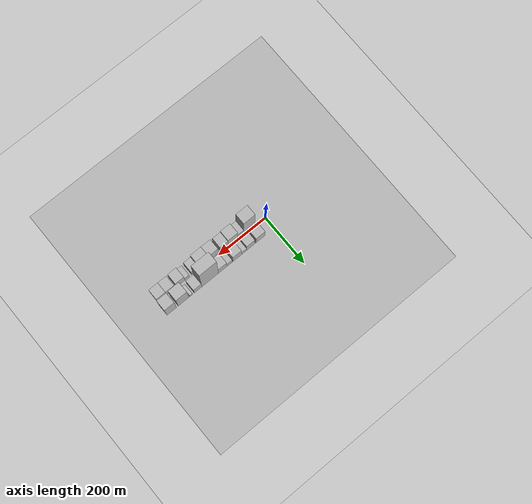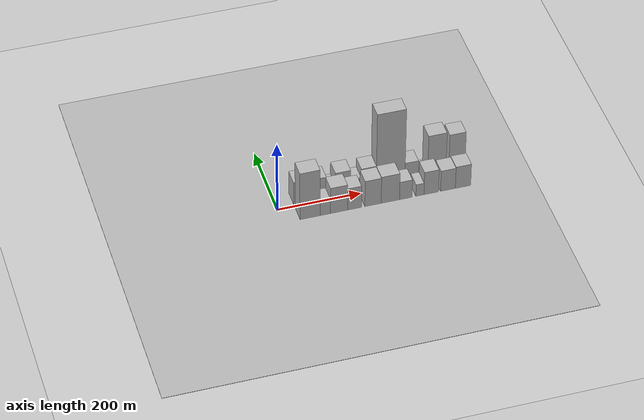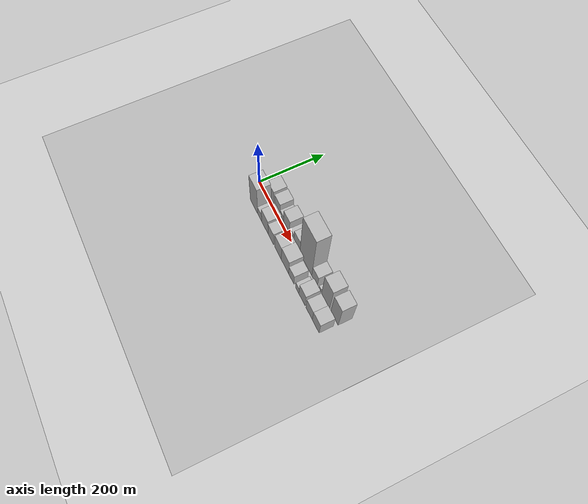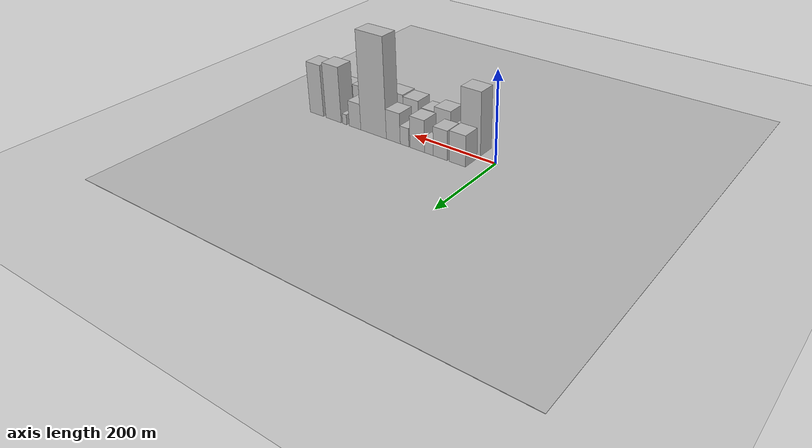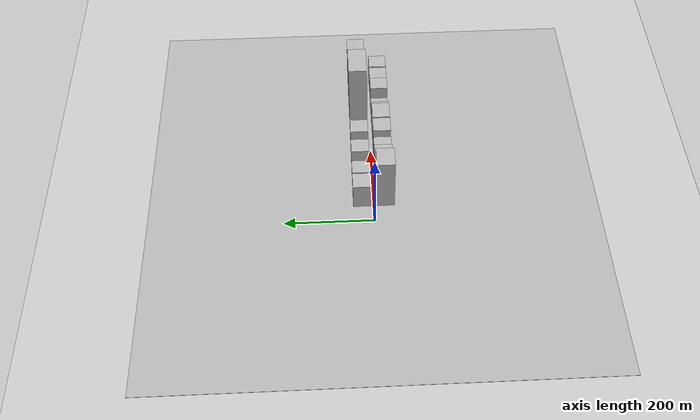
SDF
<?xml version="1.0" encoding="utf-8"?>

<sdf version="1.6">

   <world name="default">

      <gui fullscreen="0">

         <camera name="user_camera">

            <pose>-15 0 4.57585 0 0 0</pose>

            <view_controller>orbit</view_controller>

         </camera>

      </gui>

      <scene>

         <sky>

           <clouds>

             <speed>12</speed>

           </clouds>

         </sky>

         <ambient>0.4 0.4 0.4 1</ambient>

         <background>0.7 0.7 0.7 1</background>

         <shadows>1</shadows>

      </scene>

      <gravity>0 0 -9.8066</gravity>

      <magnetic_field>6e-06 2.3e-05 -4.2e-05</magnetic_field>

      <physics default="0" name="default_physics" type="ode">

         <ode>

            <solver>

               <type>quick</type>

               <iters>10</iters>

               <sor>1.0</sor>

               <use_dynamic_moi_rescaling>0</use_dynamic_moi_rescaling>

            </solver>

            <constraints>

               <cfm>0</cfm>

               <erp>0.2</erp>

               <contact_max_correcting_vel>100</contact_max_correcting_vel>

               <contact_surface_layer>0.001</contact_surface_layer>

            </constraints>

         </ode>

         <max_step_size>0.004</max_step_size>

         <real_time_factor>1</real_time_factor>

         <real_time_update_rate>250</real_time_update_rate>

      </physics>

      <light name="sun" type="directional">

         <cast_shadows>1</cast_shadows>

         <pose>0 0 10 0 0 0</pose>

         <diffuse>0.8 0.8 0.8 1</diffuse>

         <specular>0.2 0.2 0.2 1</specular>

         <attenuation>

            <range>1000</range>

            <constant>0.9</constant>

            <linear>0.01</linear>

            <quadratic>0.001</quadratic>

         </attenuation>

         <direction>-0.5 0.1 -0.9</direction>

      </light>

      <include>

         <name>ground_plane_1</name>

         <uri>model://HANNAS_ground_plane</uri>

         <pose>0 0 0  0 0 0</pose>

      </include>

      <include>

         <name>ground_plane_2</name>

         <uri>model://HANNAS_ground_plane</uri>

         <pose>100 0 0  0 0 0</pose>

      </include>

      <model name="building_1">

         <static>1</static>

         <pose frame="">59.2588 26.0000 0 0.000000 0.000000 1.570796</pose>

         <link name="link">

            <pose frame="">0 0 34.50 0 0 0</pose>

            <collision name="collision">

               <geometry>

                  <box>

                     <size>40.0000 38.5175 69.0000</size>

                  </box>

               </geometry>

               <max_contacts>10</max_contacts>

               <surface>

                  <contact>

                     <ode/>

                  </contact>

                  <bounce/>

                  <friction>

                     <torsional>

                        <ode/>

                     </torsional>

                     <ode/>

                  </friction>

               </surface>

            </collision>

            <visual name="visual">

               <cast_shadows>0</cast_shadows>

               <geometry>

                  <box>

                     <size>40.0000 38.5175 69.0000</size>

                  </box>

               </geometry>

               <material>

                  <script>

                     <uri>model://HANNAS_wall/materials/scripts</uri>

                     <uri>model://HANNAS_wall/materials/textures</uri>

                     <name>vrc/HANNAS_wall</name>

                  </script>

               </material>

            </visual>

            <self_collide>0</self_collide>

            <enable_wind>0</enable_wind>

            <kinematic>0</kinematic>

         </link>

      </model>

      <model name="building_2">

         <static>1</static>

         <pose frame="">100.7636 26.0000 0 0.000000 0.000000 1.570796</pose>

         <link name="link">

            <pose frame="">0 0 33.00 0 0 0</pose>

            <collision name="collision">

               <geometry>

                  <box>

                     <size>40.0000 34.4922 66.0000</size>

                  </box>

               </geometry>

               <max_contacts>10</max_contacts>

               <surface>

                  <contact>

                     <ode/>

                  </contact>

                  <bounce/>

                  <friction>

                     <torsional>

                        <ode/>

                     </torsional>

                     <ode/>

                  </friction>

               </surface>

            </collision>

            <visual name="visual">

               <cast_shadows>0</cast_shadows>

               <geometry>

                  <box>

                     <size>40.0000 34.4922 66.0000</size>

                  </box>

               </geometry>

               <material>

                  <script>

                     <uri>model://HANNAS_wall/materials/scripts</uri>

                     <uri>model://HANNAS_wall/materials/textures</uri>

                     <name>vrc/HANNAS_wall</name>

                  </script>

               </material>

            </visual>

            <self_collide>0</self_collide>

            <enable_wind>0</enable_wind>

            <kinematic>0</kinematic>

         </link>

      </model>

      <model name="building_3">

         <static>1</static>

         <pose frame="">128.8021 26.0000 0 0.000000 0.000000 1.570796</pose>

         <link name="link">

            <pose frame="">0 0 18.00 0 0 0</pose>

            <collision name="collision">

               <geometry>

                  <box>

                     <size>40.0000 21.5847 36.0000</size>

                  </box>

               </geometry>

               <max_contacts>10</max_contacts>

               <surface>

                  <contact>

                     <ode/>

                  </contact>

                  <bounce/>

                  <friction>

                     <torsional>

                        <ode/>

                     </torsional>

                     <ode/>

                  </friction>

               </surface>

            </collision>

            <visual name="visual">

               <cast_shadows>0</cast_shadows>

               <geometry>

                  <box>

                     <size>40.0000 21.5847 36.0000</size>

                  </box>

               </geometry>

               <material>

                  <script>

                     <uri>model://HANNAS_wall/materials/scripts</uri>

                     <uri>model://HANNAS_wall/materials/textures</uri>

                     <name>vrc/HANNAS_wall</name>

                  </script>

               </material>

            </visual>

            <self_collide>0</self_collide>

            <enable_wind>0</enable_wind>

            <kinematic>0</kinematic>

         </link>

      </model>

      <model name="building_4">

         <static>1</static>

         <pose frame="">157.8917 26.0000 0 0.000000 0.000000 1.570796</pose>

         <link name="link">

            <pose frame="">0 0 36.00 0 0 0</pose>

            <collision name="collision">

               <geometry>

                  <box>

                     <size>40.0000 36.5945 72.0000</size>

                  </box>

               </geometry>

               <max_contacts>10</max_contacts>

               <surface>

                  <contact>

                     <ode/>

                  </contact>

                  <bounce/>

                  <friction>

                     <torsional>

                        <ode/>

                     </torsional>

                     <ode/>

                  </friction>

               </surface>

            </collision>

            <visual name="visual">

               <cast_shadows>0</cast_shadows>

               <geometry>

                  <box>

                     <size>40.0000 36.5945 72.0000</size>

                  </box>

               </geometry>

               <material>

                  <script>

                     <uri>model://HANNAS_wall/materials/scripts</uri>

                     <uri>model://HANNAS_wall/materials/textures</uri>

                     <name>vrc/HANNAS_wall</name>

                  </script>

               </material>

            </visual>

            <self_collide>0</self_collide>

            <enable_wind>0</enable_wind>

            <kinematic>0</kinematic>

         </link>

      </model>

      <model name="building_5">

         <static>1</static>

         <pose frame="">190.3808 26.0000 0 0.000000 0.000000 1.570796</pose>

         <link name="link">

            <pose frame="">0 0 21.00 0 0 0</pose>

            <collision name="collision">

               <geometry>

                  <box>

                     <size>40.0000 22.3836 42.0000</size>

                  </box>

               </geometry>

               <max_contacts>10</max_contacts>

               <surface>

                  <contact>

                     <ode/>

                  </contact>

                  <bounce/>

                  <friction>

                     <torsional>

                        <ode/>

                     </torsional>

                     <ode/>

                  </friction>

               </surface>

            </collision>

            <visual name="visual">

               <cast_shadows>0</cast_shadows>

               <geometry>

                  <box>

                     <size>40.0000 22.3836 42.0000</size>

                  </box>

               </geometry>

               <material>

                  <script>

                     <uri>model://HANNAS_wall/materials/scripts</uri>

                     <uri>model://HANNAS_wall/materials/textures</uri>

                     <name>vrc/HANNAS_wall</name>

                  </script>

               </material>

            </visual>

            <self_collide>0</self_collide>

            <enable_wind>0</enable_wind>

            <kinematic>0</kinematic>

         </link>

      </model>

      <model name="building_6">

         <static>1</static>

         <pose frame="">219.8024 26.0000 0 0.000000 0.000000 1.570796</pose>

         <link name="link">

            <pose frame="">0 0 34.50 0 0 0</pose>

            <collision name="collision">

               <geometry>

                  <box>

                     <size>40.0000 36.4597 69.0000</size>

                  </box>

               </geometry>

               <max_contacts>10</max_contacts>

               <surface>

                  <contact>

                     <ode/>

                  </contact>

                  <bounce/>

                  <friction>

                     <torsional>

                        <ode/>

                     </torsional>

                     <ode/>

                  </friction>

               </surface>

            </collision>

            <visual name="visual">

               <cast_shadows>0</cast_shadows>

               <geometry>

                  <box>

                     <size>40.0000 36.4597 69.0000</size>

                  </box>

               </geometry>

               <material>

                  <script>

                     <uri>model://HANNAS_wall/materials/scripts</uri>

                     <uri>model://HANNAS_wall/materials/textures</uri>

                     <name>vrc/HANNAS_wall</name>

                  </script>

               </material>

            </visual>

            <self_collide>0</self_collide>

            <enable_wind>0</enable_wind>

            <kinematic>0</kinematic>

         </link>

      </model>

      <model name="building_7">

         <static>1</static>

         <pose frame="">272.6233 26.0000 0 0.000000 0.000000 1.570796</pose>

         <link name="link">

            <pose frame="">0 0 112.50 0 0 0</pose>

            <collision name="collision">

               <geometry>

                  <box>

                     <size>40.0000 69.1821 225.0000</size>

                  </box>

               </geometry>

               <max_contacts>10</max_contacts>

               <surface>

                  <contact>

                     <ode/>

                  </contact>

                  <bounce/>

                  <friction>

                     <torsional>

                        <ode/>

                     </torsional>

                     <ode/>

                  </friction>

               </surface>

            </collision>

            <visual name="visual">

               <cast_shadows>0</cast_shadows>

               <geometry>

                  <box>

                     <size>40.0000 69.1821 225.0000</size>

                  </box>

               </geometry>

               <material>

                  <script>

                     <uri>model://HANNAS_wall/materials/scripts</uri>

                     <uri>model://HANNAS_wall/materials/textures</uri>

                     <name>vrc/HANNAS_wall</name>

                  </script>

               </material>

            </visual>

            <self_collide>0</self_collide>

            <enable_wind>0</enable_wind>

            <kinematic>0</kinematic>

         </link>

      </model>

      <model name="building_8">

         <static>1</static>

         <pose frame="">323.3936 26.0000 0 0.000000 0.000000 1.570796</pose>

         <link name="link">

            <pose frame="">0 0 30.00 0 0 0</pose>

            <collision name="collision">

               <geometry>

                  <box>

                     <size>40.0000 32.3586 60.0000</size>

                  </box>

               </geometry>

               <max_contacts>10</max_contacts>

               <surface>

                  <contact>

                     <ode/>

                  </contact>

                  <bounce/>

                  <friction>

                     <torsional>

                        <ode/>

                     </torsional>

                     <ode/>

                  </friction>

               </surface>

            </collision>

            <visual name="visual">

               <cast_shadows>0</cast_shadows>

               <geometry>

                  <box>

                     <size>40.0000 32.3586 60.0000</size>

                  </box>

               </geometry>

               <material>

                  <script>

                     <uri>model://HANNAS_wall/materials/scripts</uri>

                     <uri>model://HANNAS_wall/materials/textures</uri>

                     <name>vrc/HANNAS_wall</name>

                  </script>

               </material>

            </visual>

            <self_collide>0</self_collide>

            <enable_wind>0</enable_wind>

            <kinematic>0</kinematic>

         </link>

      </model>

      <model name="building_9">

         <static>1</static>

         <pose frame="">352.4111 26.0000 0 0.000000 0.000000 1.570796</pose>

         <link name="link">

            <pose frame="">0 0 12.00 0 0 0</pose>

            <collision name="collision">

               <geometry>

                  <box>

                     <size>40.0000 11.6762 24.0000</size>

                  </box>

               </geometry>

               <max_contacts>10</max_contacts>

               <surface>

                  <contact>

                     <ode/>

                  </contact>

                  <bounce/>

                  <friction>

                     <torsional>

                        <ode/>

                     </torsional>

                     <ode/>

                  </friction>

               </surface>

            </collision>

            <visual name="visual">

               <cast_shadows>0</cast_shadows>

               <geometry>

                  <box>

                     <size>40.0000 11.6762 24.0000</size>

                  </box>

               </geometry>

               <material>

                  <script>

                     <uri>model://HANNAS_wall/materials/scripts</uri>

                     <uri>model://HANNAS_wall/materials/textures</uri>

                     <name>vrc/HANNAS_wall</name>

                  </script>

               </material>

            </visual>

            <self_collide>0</self_collide>

            <enable_wind>0</enable_wind>

            <kinematic>0</kinematic>

         </link>

      </model>

      <model name="building_10">

         <static>1</static>

         <pose frame="">384.4233 26.0000 0 0.000000 0.000000 1.570796</pose>

         <link name="link">

            <pose frame="">0 0 64.50 0 0 0</pose>

            <collision name="collision">

               <geometry>

                  <box>

                     <size>40.0000 44.3482 129.0000</size>

                  </box>

               </geometry>

               <max_contacts>10</max_contacts>

               <surface>

                  <contact>

                     <ode/>

                  </contact>

                  <bounce/>

                  <friction>

                     <torsional>

                        <ode/>

                     </torsional>

                     <ode/>

                  </friction>

               </surface>

            </collision>

            <visual name="visual">

               <cast_shadows>0</cast_shadows>

               <geometry>

                  <box>

                     <size>40.0000 44.3482 129.0000</size>

                  </box>

               </geometry>

               <material>

                  <script>

                     <uri>model://HANNAS_wall/materials/scripts</uri>

                     <uri>model://HANNAS_wall/materials/textures</uri>

                     <name>vrc/HANNAS_wall</name>

                  </script>

               </material>

            </visual>

            <self_collide>0</self_collide>

            <enable_wind>0</enable_wind>

            <kinematic>0</kinematic>

         </link>

      </model>

      <model name="building_11">

         <static>1</static>

         <pose frame="">433.3507 26.0000 0 0.000000 0.000000 1.570796</pose>

         <link name="link">

            <pose frame="">0 0 60.00 0 0 0</pose>

            <collision name="collision">

               <geometry>

                  <box>

                     <size>40.0000 39.5066 120.0000</size>

                  </box>

               </geometry>

               <max_contacts>10</max_contacts>

               <surface>

                  <contact>

                     <ode/>

                  </contact>

                  <bounce/>

                  <friction>

                     <torsional>

                        <ode/>

                     </torsional>

                     <ode/>

                  </friction>

               </surface>

            </collision>

            <visual name="visual">

               <cast_shadows>0</cast_shadows>

               <geometry>

                  <box>

                     <size>40.0000 39.5066 120.0000</size>

                  </box>

               </geometry>

               <material>

                  <script>

                     <uri>model://HANNAS_wall/materials/scripts</uri>

                     <uri>model://HANNAS_wall/materials/textures</uri>

                     <name>vrc/HANNAS_wall</name>

                  </script>

               </material>

            </visual>

            <self_collide>0</self_collide>

            <enable_wind>0</enable_wind>

            <kinematic>0</kinematic>

         </link>

      </model>

      <model name="building_12">

         <static>1</static>

         <pose frame="">63.9239 -26.0000 0 0.000000 0.000000 1.570796</pose>

         <link name="link">

            <pose frame="">0 0 70.50 0 0 0</pose>

            <collision name="collision">

               <geometry>

                  <box>

                     <size>40.0000 47.8479 141.0000</size>

                  </box>

               </geometry>

               <max_contacts>10</max_contacts>

               <surface>

                  <contact>

                     <ode/>

                  </contact>

                  <bounce/>

                  <friction>

                     <torsional>

                        <ode/>

                     </torsional>

                     <ode/>

                  </friction>

               </surface>

            </collision>

            <visual name="visual">

               <cast_shadows>0</cast_shadows>

               <geometry>

                  <box>

                     <size>40.0000 47.8479 141.0000</size>

                  </box>

               </geometry>

               <material>

                  <script>

                     <uri>model://HANNAS_wall/materials/scripts</uri>

                     <uri>model://HANNAS_wall/materials/textures</uri>

                     <name>vrc/HANNAS_wall</name>

                  </script>

               </material>

            </visual>

            <self_collide>0</self_collide>

            <enable_wind>0</enable_wind>

            <kinematic>0</kinematic>

         </link>

      </model>

      <model name="building_13">

         <static>1</static>

         <pose frame="">100.0759 -26.0000 0 0.000000 0.000000 1.570796</pose>

         <link name="link">

            <pose frame="">0 0 22.50 0 0 0</pose>

            <collision name="collision">

               <geometry>

                  <box>

                     <size>40.0000 24.4561 45.0000</size>

                  </box>

               </geometry>

               <max_contacts>10</max_contacts>

               <surface>

                  <contact>

                     <ode/>

                  </contact>

                  <bounce/>

                  <friction>

                     <torsional>

                        <ode/>

                     </torsional>

                     <ode/>

                  </friction>

               </surface>

            </collision>

            <visual name="visual">

               <cast_shadows>0</cast_shadows>

               <geometry>

                  <box>

                     <size>40.0000 24.4561 45.0000</size>

                  </box>

               </geometry>

               <material>

                  <script>

                     <uri>model://HANNAS_wall/materials/scripts</uri>

                     <uri>model://HANNAS_wall/materials/textures</uri>

                     <name>vrc/HANNAS_wall</name>

                  </script>

               </material>

            </visual>

            <self_collide>0</self_collide>

            <enable_wind>0</enable_wind>

            <kinematic>0</kinematic>

         </link>

      </model>

      <model name="building_14">

         <static>1</static>

         <pose frame="">132.6970 -26.0000 0 0.000000 0.000000 1.570796</pose>

         <link name="link">

            <pose frame="">0 0 39.00 0 0 0</pose>

            <collision name="collision">

               <geometry>

                  <box>

                     <size>40.0000 40.7861 78.0000</size>

                  </box>

               </geometry>

               <max_contacts>10</max_contacts>

               <surface>

                  <contact>

                     <ode/>

                  </contact>

                  <bounce/>

                  <friction>

                     <torsional>

                        <ode/>

                     </torsional>

                     <ode/>

                  </friction>

               </surface>

            </collision>

            <visual name="visual">

               <cast_shadows>0</cast_shadows>

               <geometry>

                  <box>

                     <size>40.0000 40.7861 78.0000</size>

                  </box>

               </geometry>

               <material>

                  <script>

                     <uri>model://HANNAS_wall/materials/scripts</uri>

                     <uri>model://HANNAS_wall/materials/textures</uri>

                     <name>vrc/HANNAS_wall</name>

                  </script>

               </material>

            </visual>

            <self_collide>0</self_collide>

            <enable_wind>0</enable_wind>

            <kinematic>0</kinematic>

         </link>

      </model>

      <model name="building_15">

         <static>1</static>

         <pose frame="">169.8211 -26.0000 0 0.000000 0.000000 1.570796</pose>

         <link name="link">

            <pose frame="">0 0 33.00 0 0 0</pose>

            <collision name="collision">

               <geometry>

                  <box>

                     <size>40.0000 33.4621 66.0000</size>

                  </box>

               </geometry>

               <max_contacts>10</max_contacts>

               <surface>

                  <contact>

                     <ode/>

                  </contact>

                  <bounce/>

                  <friction>

                     <torsional>

                        <ode/>

                     </torsional>

                     <ode/>

                  </friction>

               </surface>

            </collision>

            <visual name="visual">

               <cast_shadows>0</cast_shadows>

               <geometry>

                  <box>

                     <size>40.0000 33.4621 66.0000</size>

                  </box>

               </geometry>

               <material>

                  <script>

                     <uri>model://HANNAS_wall/materials/scripts</uri>

                     <uri>model://HANNAS_wall/materials/textures</uri>

                     <name>vrc/HANNAS_wall</name>

                  </script>

               </material>

            </visual>

            <self_collide>0</self_collide>

            <enable_wind>0</enable_wind>

            <kinematic>0</kinematic>

         </link>

      </model>

      <model name="building_16">

         <static>1</static>

         <pose frame="">214.1197 -26.0000 0 0.000000 0.000000 1.570796</pose>

         <link name="link">

            <pose frame="">0 0 39.00 0 0 0</pose>

            <collision name="collision">

               <geometry>

                  <box>

                     <size>40.0000 39.1350 78.0000</size>

                  </box>

               </geometry>

               <max_contacts>10</max_contacts>

               <surface>

                  <contact>

                     <ode/>

                  </contact>

                  <bounce/>

                  <friction>

                     <torsional>

                        <ode/>

                     </torsional>

                     <ode/>

                  </friction>

               </surface>

            </collision>

            <visual name="visual">

               <cast_shadows>0</cast_shadows>

               <geometry>

                  <box>

                     <size>40.0000 39.1350 78.0000</size>

                  </box>

               </geometry>

               <material>

                  <script>

                     <uri>model://HANNAS_wall/materials/scripts</uri>

                     <uri>model://HANNAS_wall/materials/textures</uri>

                     <name>vrc/HANNAS_wall</name>

                  </script>

               </material>

            </visual>

            <self_collide>0</self_collide>

            <enable_wind>0</enable_wind>

            <kinematic>0</kinematic>

         </link>

      </model>

      <model name="building_17">

         <static>1</static>

         <pose frame="">255.8155 -26.0000 0 0.000000 0.000000 1.570796</pose>

         <link name="link">

            <pose frame="">0 0 40.50 0 0 0</pose>

            <collision name="collision">

               <geometry>

                  <box>

                     <size>40.0000 44.2568 81.0000</size>

                  </box>

               </geometry>

               <max_contacts>10</max_contacts>

               <surface>

                  <contact>

                     <ode/>

                  </contact>

                  <bounce/>

                  <friction>

                     <torsional>

                        <ode/>

                     </torsional>

                     <ode/>

                  </friction>

               </surface>

            </collision>

            <visual name="visual">

               <cast_shadows>0</cast_shadows>

               <geometry>

                  <box>

                     <size>40.0000 44.2568 81.0000</size>

                  </box>

               </geometry>

               <material>

                  <script>

                     <uri>model://HANNAS_wall/materials/scripts</uri>

                     <uri>model://HANNAS_wall/materials/textures</uri>

                     <name>vrc/HANNAS_wall</name>

                  </script>

               </material>

            </visual>

            <self_collide>0</self_collide>

            <enable_wind>0</enable_wind>

            <kinematic>0</kinematic>

         </link>

      </model>

      <model name="building_18">

         <static>1</static>

         <pose frame="">293.1013 -26.0000 0 0.000000 0.000000 1.570796</pose>

         <link name="link">

            <pose frame="">0 0 27.00 0 0 0</pose>

            <collision name="collision">

               <geometry>

                  <box>

                     <size>40.0000 30.3147 54.0000</size>

                  </box>

               </geometry>

               <max_contacts>10</max_contacts>

               <surface>

                  <contact>

                     <ode/>

                  </contact>

                  <bounce/>

                  <friction>

                     <torsional>

                        <ode/>

                     </torsional>

                     <ode/>

                  </friction>

               </surface>

            </collision>

            <visual name="visual">

               <cast_shadows>0</cast_shadows>

               <geometry>

                  <box>

                     <size>40.0000 30.3147 54.0000</size>

                  </box>

               </geometry>

               <material>

                  <script>

                     <uri>model://HANNAS_wall/materials/scripts</uri>

                     <uri>model://HANNAS_wall/materials/textures</uri>

                     <name>vrc/HANNAS_wall</name>

                  </script>

               </material>

            </visual>

            <self_collide>0</self_collide>

            <enable_wind>0</enable_wind>

            <kinematic>0</kinematic>

         </link>

      </model>

      <model name="building_19">

         <static>1</static>

         <pose frame="">327.0359 -26.0000 0 0.000000 0.000000 1.570796</pose>

         <link name="link">

            <pose frame="">0 0 18.00 0 0 0</pose>

            <collision name="collision">

               <geometry>

                  <box>

                     <size>40.0000 19.5547 36.0000</size>

                  </box>

               </geometry>

               <max_contacts>10</max_contacts>

               <surface>

                  <contact>

                     <ode/>

                  </contact>

                  <bounce/>

                  <friction>

                     <torsional>

                        <ode/>

                     </torsional>

                     <ode/>

                  </friction>

               </surface>

            </collision>

            <visual name="visual">

               <cast_shadows>0</cast_shadows>

               <geometry>

                  <box>

                     <size>40.0000 19.5547 36.0000</size>

                  </box>

               </geometry>

               <material>

                  <script>

                     <uri>model://HANNAS_wall/materials/scripts</uri>

                     <uri>model://HANNAS_wall/materials/textures</uri>

                     <name>vrc/HANNAS_wall</name>

                  </script>

               </material>

            </visual>

            <self_collide>0</self_collide>

            <enable_wind>0</enable_wind>

            <kinematic>0</kinematic>

         </link>

      </model>

      <model name="building_20">

         <static>1</static>

         <pose frame="">354.3844 -26.0000 0 0.000000 0.000000 1.570796</pose>

         <link name="link">

            <pose frame="">0 0 34.50 0 0 0</pose>

            <collision name="collision">

               <geometry>

                  <box>

                     <size>40.0000 35.1423 69.0000</size>

                  </box>

               </geometry>

               <max_contacts>10</max_contacts>

               <surface>

                  <contact>

                     <ode/>

                  </contact>

                  <bounce/>

                  <friction>

                     <torsional>

                        <ode/>

                     </torsional>

                     <ode/>

                  </friction>

               </surface>

            </collision>

            <visual name="visual">

               <cast_shadows>0</cast_shadows>

               <geometry>

                  <box>

                     <size>40.0000 35.1423 69.0000</size>

                  </box>

               </geometry>

               <material>

                  <script>

                     <uri>model://HANNAS_wall/materials/scripts</uri>

                     <uri>model://HANNAS_wall/materials/textures</uri>

                     <name>vrc/HANNAS_wall</name>

                  </script>

               </material>

            </visual>

            <self_collide>0</self_collide>

            <enable_wind>0</enable_wind>

            <kinematic>0</kinematic>

         </link>

      </model>

      <model name="building_21">

         <static>1</static>

         <pose frame="">394.9069 -26.0000 0 0.000000 0.000000 1.570796</pose>

         <link name="link">

            <pose frame="">0 0 31.50 0 0 0</pose>

            <collision name="collision">

               <geometry>

                  <box>

                     <size>40.0000 35.9026 63.0000</size>

                  </box>

               </geometry>

               <max_contacts>10</max_contacts>

               <surface>

                  <contact>

                     <ode/>

                  </contact>

                  <bounce/>

                  <friction>

                     <torsional>

                        <ode/>

                     </torsional>

                     <ode/>

                  </friction>

               </surface>

            </collision>

            <visual name="visual">

               <cast_shadows>0</cast_shadows>

               <geometry>

                  <box>

                     <size>40.0000 35.9026 63.0000</size>

                  </box>

               </geometry>

               <material>

                  <script>

                     <uri>model://HANNAS_wall/materials/scripts</uri>

                     <uri>model://HANNAS_wall/materials/textures</uri>

                     <name>vrc/HANNAS_wall</name>

                  </script>

               </material>

            </visual>

            <self_collide>0</self_collide>

            <enable_wind>0</enable_wind>

            <kinematic>0</kinematic>

         </link>

      </model>

      <model name="building_22">

         <static>1</static>

         <pose frame="">431.5037 -26.0000 0 0.000000 0.000000 1.570796</pose>

         <link name="link">

            <pose frame="">0 0 33.00 0 0 0</pose>

            <collision name="collision">

               <geometry>

                  <box>

                     <size>40.0000 37.2909 66.0000</size>

                  </box>

               </geometry>

               <max_contacts>10</max_contacts>

               <surface>

                  <contact>

                     <ode/>

                  </contact>

                  <bounce/>

                  <friction>

                     <torsional>

                        <ode/>

                     </torsional>

                     <ode/>

                  </friction>

               </surface>

            </collision>

            <visual name="visual">

               <cast_shadows>0</cast_shadows>

               <geometry>

                  <box>

                     <size>40.0000 37.2909 66.0000</size>

                  </box>

               </geometry>

               <material>

                  <script>

                     <uri>model://HANNAS_wall/materials/scripts</uri>

                     <uri>model://HANNAS_wall/materials/textures</uri>

                     <name>vrc/HANNAS_wall</name>

                  </script>

               </material>

            </visual>

            <self_collide>0</self_collide>

            <enable_wind>0</enable_wind>

            <kinematic>0</kinematic>

         </link>

      </model>

   </world>

</sdf>

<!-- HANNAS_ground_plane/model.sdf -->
<sdf version="1.4">
<model name="HANNAS_ground_plane">
  <static>true</static>
    <link name="link">
      <collision name="collision">
        <geometry>
          <plane>
            <normal>0 0 1</normal>
            <size>1000 1000</size>
          </plane>
        </geometry>
        <surface>
          <friction>
            <ode>
              <mu>100</mu>
              <mu2>50</mu2>
            </ode>
          </friction>
        </surface>
      </collision>
      <visual name="visual">
        <cast_shadows>false</cast_shadows>
        <geometry>
          <plane>
            <normal>0 0 1</normal>
            <size>1000 1000</size>
          </plane>
        </geometry>
        <material>
          <script>
            <uri>model://HANNAS_ground_plane/materials/scripts/HANNAS_ground_plane.material</uri>
	    <uri>model://HANNAS_ground_plane/materials/textures</uri>
            <name>HANNASGroundPlane/Image</name>
          </script>
        </material>
      </visual>
    </link>
  </model>
</sdf>
